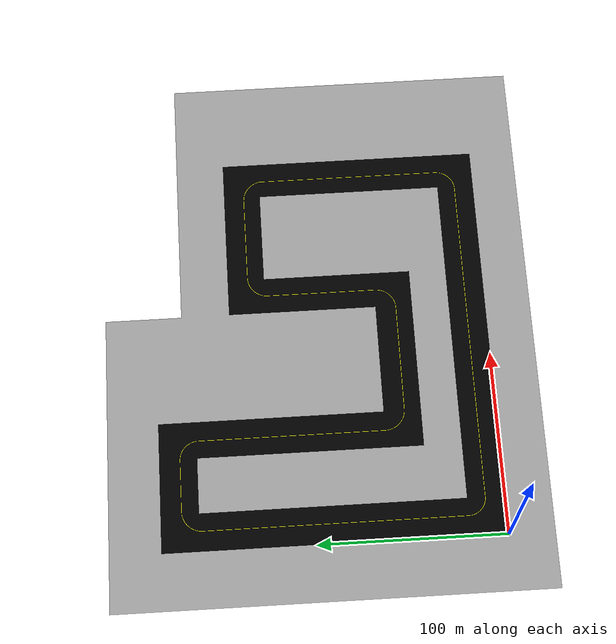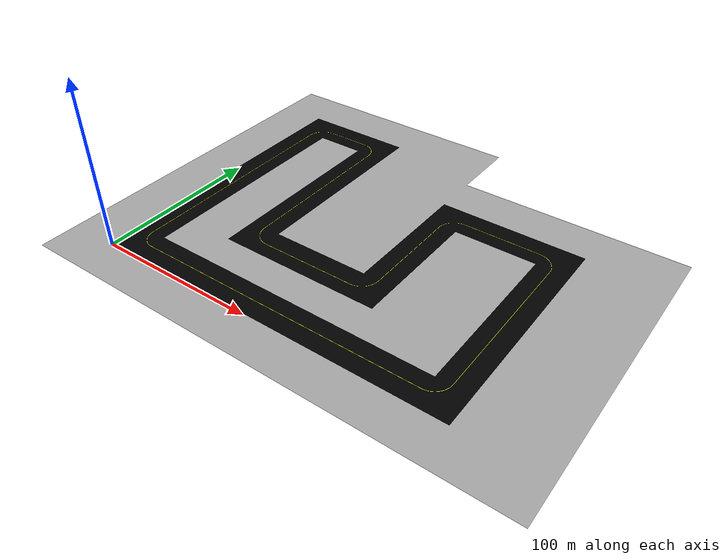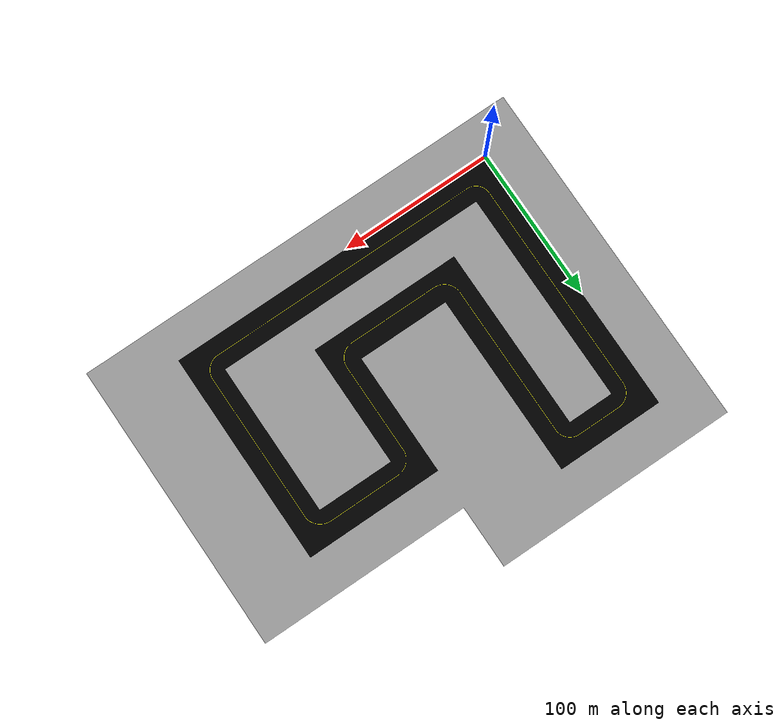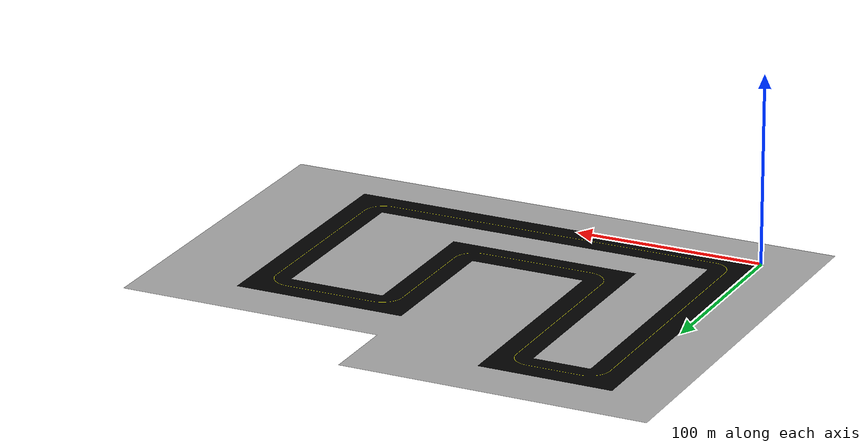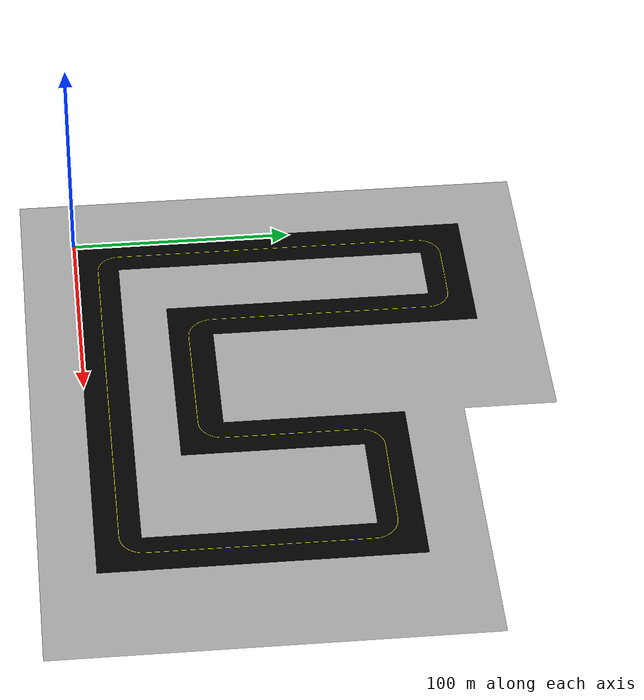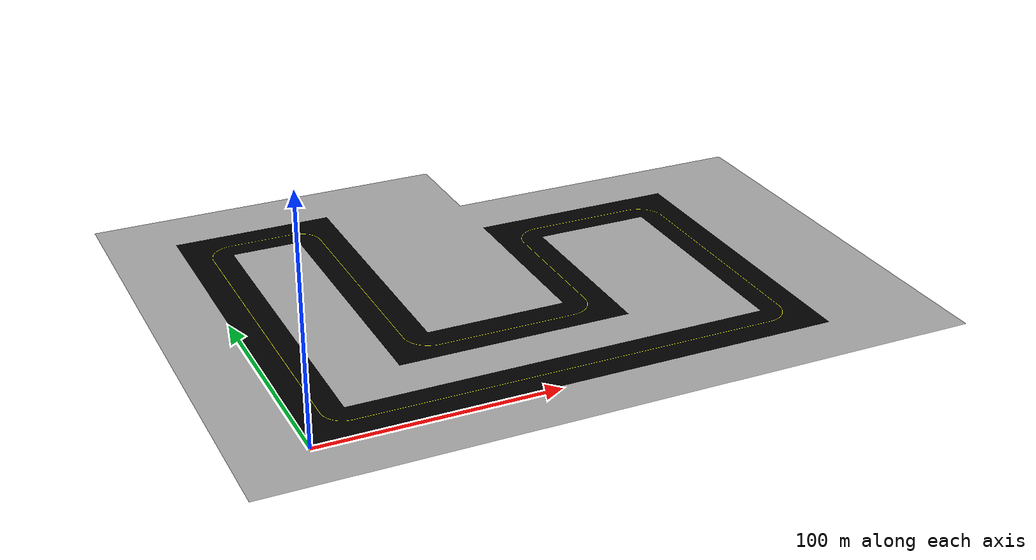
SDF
<sdf version="1.6">
 <world name="default">
  <light name="sun" type="directional">
   <pose>0 0 10 0 -0 0</pose>
   <diffuse>0.8 0.8 0.8 1</diffuse>
   <specular>0.2 0.2 0.2 1</specular>
   <attenuation>
    <range>1000</range>
    <constant>0.9</constant>
    <linear>0.01</linear>
    <quadratic>0.001</quadratic>
   </attenuation>
   <direction>-0.5 0.1 -0.9</direction>
  </light>
  <model name="LineTrack">
   <pose>0 0 1 0 -0 0</pose>
   <static>1</static>
   <link name="link">
    <inertial><mass>1000</mass></inertial>
    <collision name="collision">
     <geometry><mesh><uri>model://LineTrack/PISTA4_updated.dae</uri></mesh></geometry>
    </collision>
    <visual name="visual">
     <geometry><mesh><uri>model://LineTrack/PISTA4_updated.dae</uri></mesh></geometry>
    </visual>
   </link>
  </model>
  <gravity>0 0 -9.8</gravity>
  <magnetic_field>6e-06 2.3e-05 -4.2e-05</magnetic_field>
  <atmosphere type="adiabatic"/>
  <physics name="default_physics" default="0" type="ode">
   <max_step_size>0.001</max_step_size>
   <real_time_factor>1</real_time_factor>
   <real_time_update_rate>400</real_time_update_rate>
  </physics>
  <scene><ambient>0.4 0.4 0.4 1</ambient><background>0.7 0.7 0.7 1</background><shadows>1</shadows></scene>
  <spherical_coordinates>
   <surface_model>EARTH_WGS84</surface_model>
   <latitude_deg>0</latitude_deg>
   <longitude_deg>0</longitude_deg>
   <elevation>0</elevation>
   <heading_deg>0</heading_deg>
  </spherical_coordinates>
 </world>
</sdf>
